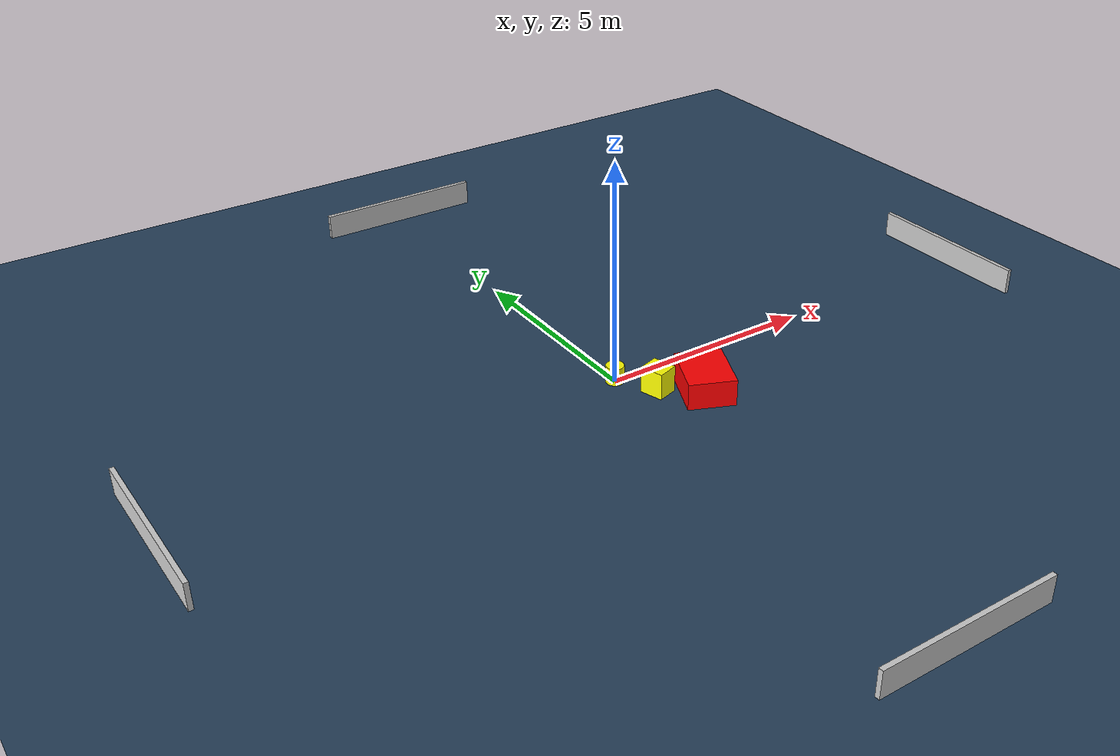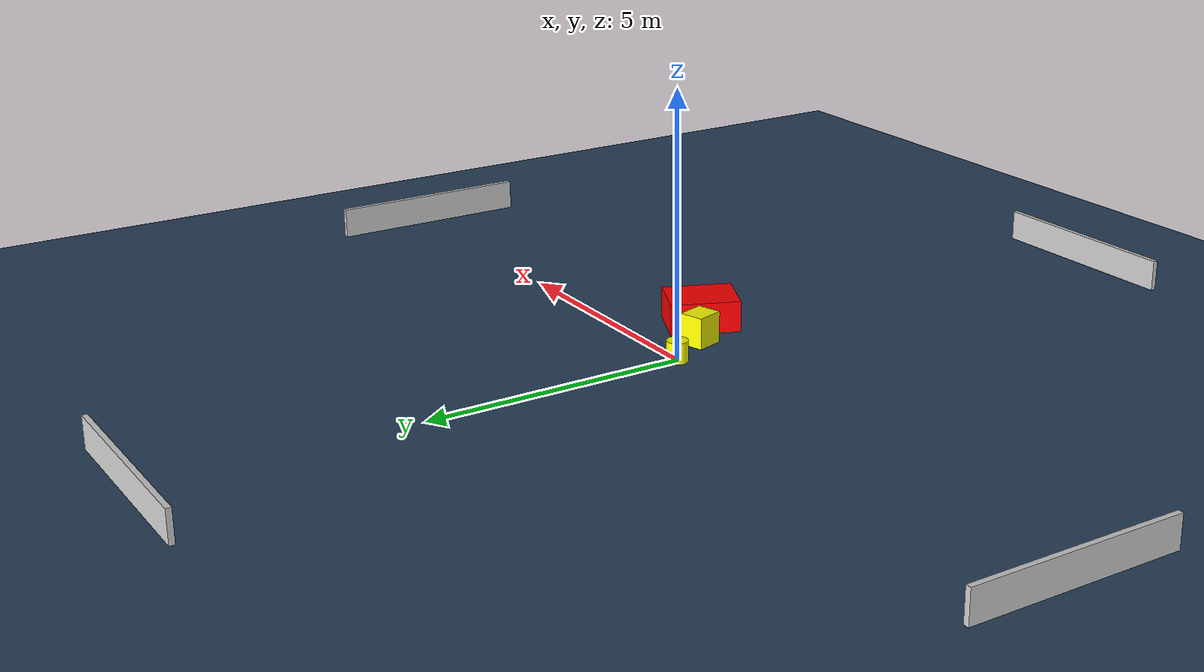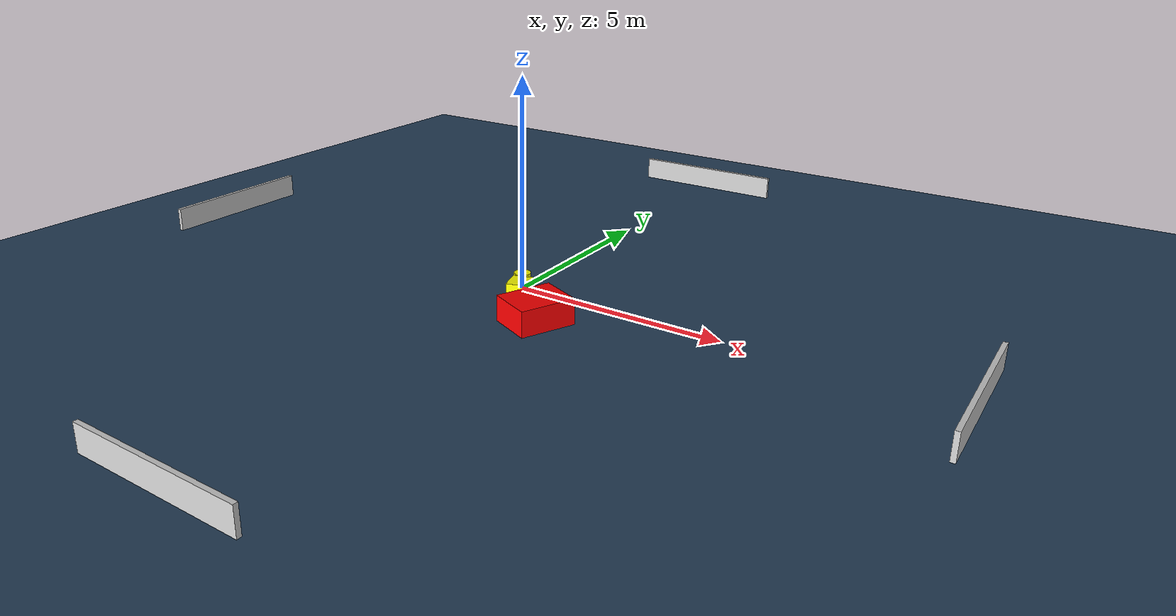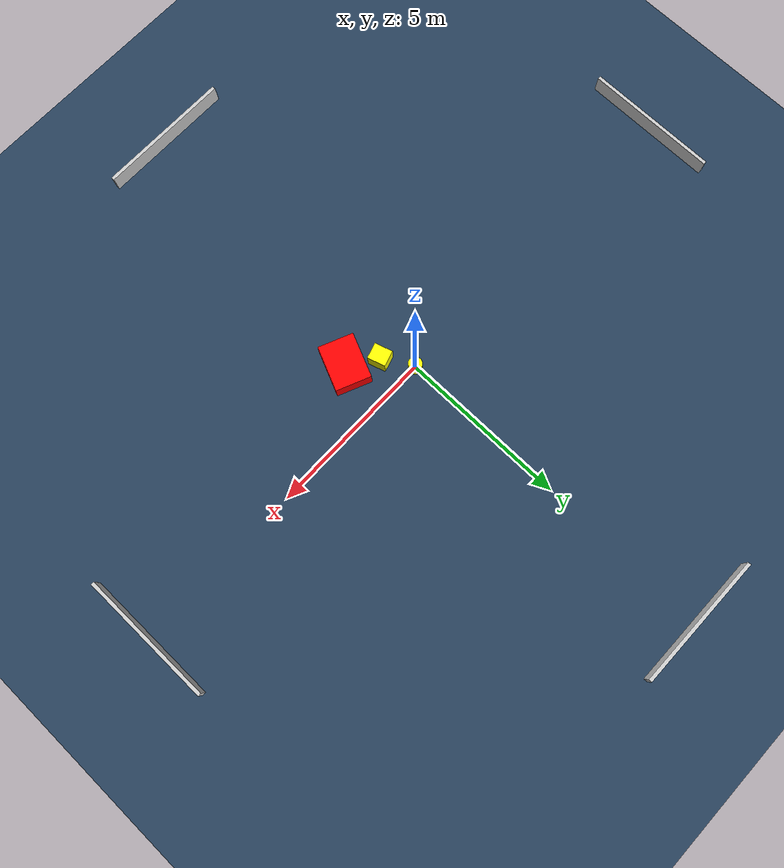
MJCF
<?xml version="1.0" ?>
<mujoco model="generated_environment">
  <option timestep="0.01" integrator="RK4" cone="elliptic"/>
  <default>
    <geom density="1"/>
  </default>
  <asset>
    <texture builtin="gradient" height="3072" name="skybox" rgb1="0.3 0.5 0.7" rgb2="0 0 0" type="skybox" width="512"/>
    <texture builtin="checker" height="300" name="groundplane" rgb1="0.2 0.3 0.4" rgb2="0.1 0.2 0.3" type="2d" width="300"/>
    <material name="groundplane" reflectance="0.2" texrepeat="5 5" texture="groundplane"/>
  </asset>
  <worldbody>
    <light dir="0 0 -1" directional="true" pos="0 0 1.5"/>
    <geom condim="3" friction="0.5 0.005 0.001" material="groundplane" name="floor" pos="0 0 0" size="0 0 0.05" type="plane"/>
    <body name="walls">
      <geom name="wall_1" condim="4" pos="-10.0 0.0 0.3" rgba="0.800000011920929 0.800000011920929 0.800000011920929 1.0" size="0.05 2.0 0.3" type="box"/>
      <geom name="wall_2" condim="4" pos="10.0 0.0 0.3" rgba="0.800000011920929 0.800000011920929 0.800000011920929 1.0" size="0.05 2.0 0.3" type="box"/>
      <geom name="wall_3" condim="4" pos="0.0 -10.0 0.3" rgba="0.800000011920929 0.800000011920929 0.800000011920929 1.0" size="2.0 0.05 0.3" type="box"/>
      <geom name="wall_4" condim="4" pos="0.0 10.0 0.3" rgba="0.800000011920929 0.800000011920929 0.800000011920929 1.0" size="2.0 0.05 0.3" type="box"/>
    </body>
    <body name="robot">
      <joint name="joint_x" type="slide" pos="0 0 0" axis="1 0 0"/>
      <joint name="joint_y" type="slide" pos="0 0 0" axis="0 1 0"/>
      <geom name="robot" type="cylinder" pos="0.0 0.0 0.2" size="0.2 0.2 0.0" mass="5.0" friction="1.0 0.005 0.0001" condim="4" rgba="1.0 1.0 0.0 1.0"/>
    </body>
    <body name="obstacle_1_movable">
      <geom name="obstacle_1_movable" condim="4" pos="0.5151263360797549 -0.8414939654124094 0.3" euler="0 0 16.920915949131796" friction="0.0 0.005 0.001" rgba="1.0 1.0 0.0 1.0" size="0.23546283400760937 0.26719421727171827 0.3" type="box" mass="0.1"/>
      <joint type="free"/>
    </body>
    <body name="obstacle_2_static">
      <geom name="obstacle_2_static" condim="4" pos="1.3258117418428317 -1.4010056244279117 0.3" euler="0 0 156.39514972868977" friction="0.0 0.005 0.001" rgba="1.0 0.0 0.0 1.0" size="0.5217954420653163 0.6664464481988934 0.3" type="box"/>
    </body>
  </worldbody>
  <actuator>
    <motor name="actuator_x" joint="joint_x" gear="1" ctrlrange="-1 1"/>
    <motor name="actuator_y" joint="joint_y" gear="1" ctrlrange="-1 1"/>
  </actuator>
</mujoco>
